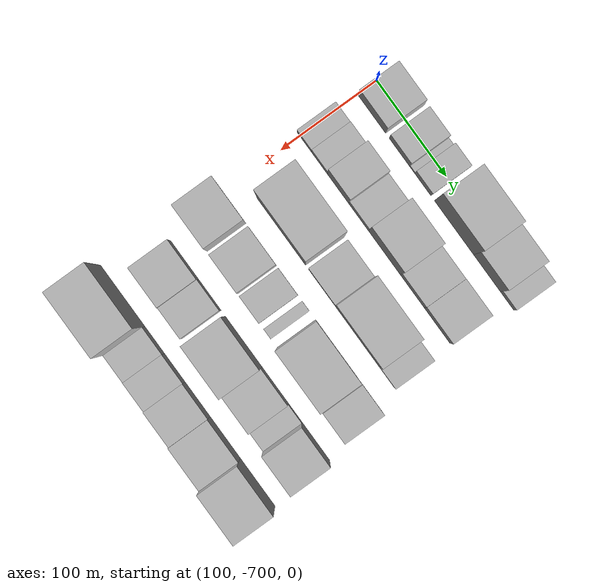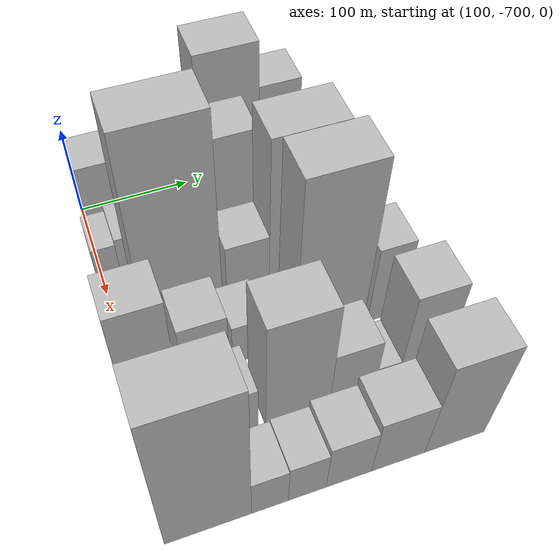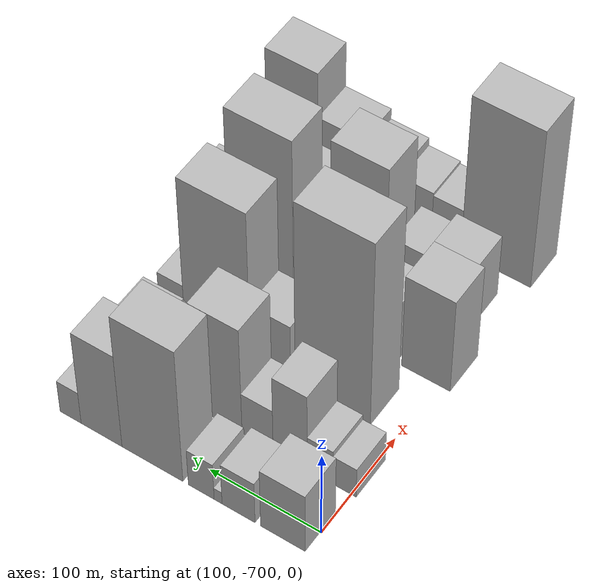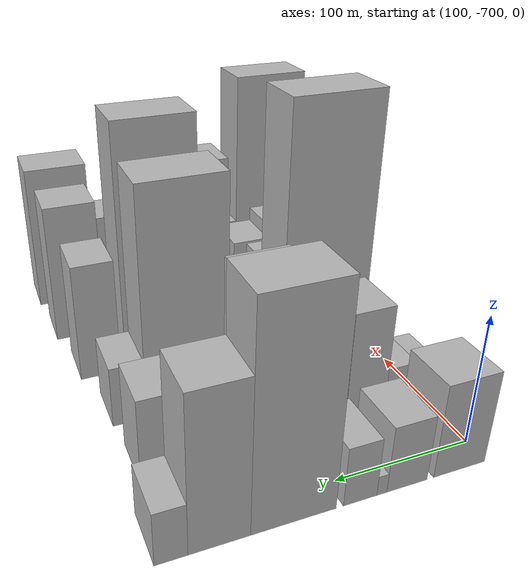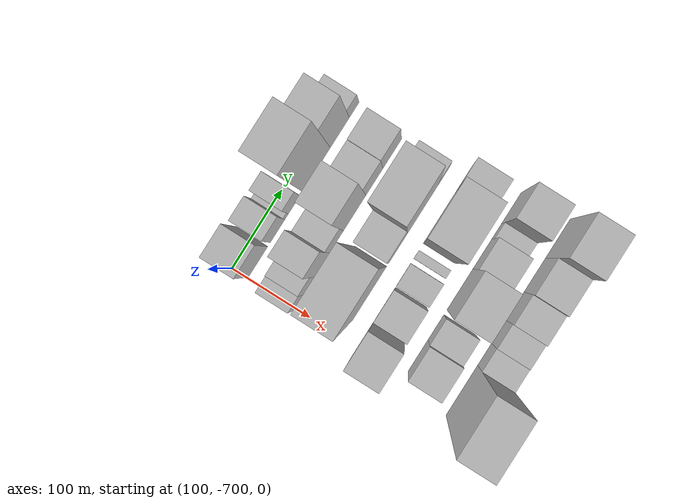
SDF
<sdf version="1.6">
 <world name="default">
  <model name="building_8">
   <static>1</static>
   <pose>100.0000 -679.2799 0 0.000000 0.000000 0.000000</pose>
   <link name="link">
    <pose>0 0 36.00 0 0 0</pose>
    <collision name="collision"><geometry><box><size>40.0000 39.3933 72.0000</size></box></geometry></collision>
    <visual name="visual">
     <cast_shadows>0</cast_shadows>
     <geometry><box><size>40.0000 39.3933 72.0000</size></box></geometry>
     <material>
      <script>
       <uri>model://HANNAS_wall/materials/scripts</uri>
       <uri>model://HANNAS_wall/materials/textures</uri>
       <name>vrc/HANNAS_wall</name>
      </script>
     </material>
    </visual>
   </link>
  </model>
  <model name="building_9">
   <static>1</static>
   <pose>100.0000 -639.7882 0 0.000000 0.000000 0.000000</pose>
   <link name="link">
    <pose>0 0 25.50 0 0 0</pose>
    <collision name="collision"><geometry><box><size>40.0000 29.5902 51.0000</size></box></geometry></collision>
    <visual name="visual">
     <cast_shadows>0</cast_shadows>
     <geometry><box><size>40.0000 29.5902 51.0000</size></box></geometry>
     <material>
      <script>
       <uri>model://HANNAS_wall/materials/scripts</uri>
       <uri>model://HANNAS_wall/materials/textures</uri>
       <name>vrc/HANNAS_wall</name>
      </script>
     </material>
    </visual>
   </link>
  </model>
  <model name="building_10">
   <static>1</static>
   <pose>100.0000 -621.4245 0 0.000000 0.000000 0.000000</pose>
   <link name="link">
    <pose>0 0 7.50 0 0 0</pose>
    <collision name="collision"><geometry><box><size>40.0000 7.1371 15.0000</size></box></geometry></collision>
    <visual name="visual">
     <cast_shadows>0</cast_shadows>
     <geometry><box><size>40.0000 7.1371 15.0000</size></box></geometry>
     <material>
      <script>
       <uri>model://HANNAS_wall/materials/scripts</uri>
       <uri>model://HANNAS_wall/materials/textures</uri>
       <name>vrc/HANNAS_wall</name>
      </script>
     </material>
    </visual>
   </link>
  </model>
  <model name="building_11">
   <static>1</static>
   <pose>100.0000 -606.1702 0 0.000000 0.000000 0.000000</pose>
   <link name="link">
    <pose>0 0 22.50 0 0 0</pose>
    <collision name="collision"><geometry><box><size>40.0000 23.3716 45.0000</size></box></geometry></collision>
    <visual name="visual">
     <cast_shadows>0</cast_shadows>
     <geometry><box><size>40.0000 23.3716 45.0000</size></box></geometry>
     <material>
      <script>
       <uri>model://HANNAS_wall/materials/scripts</uri>
       <uri>model://HANNAS_wall/materials/textures</uri>
       <name>vrc/HANNAS_wall</name>
      </script>
     </material>
    </visual>
   </link>
  </model>
  <model name="building_12">
   <static>1</static>
   <pose>100.0000 -561.4425 0 0.000000 0.000000 0.000000</pose>
   <link name="link">
    <pose>0 0 81.00 0 0 0</pose>
    <collision name="collision"><geometry><box><size>40.0000 56.0838 162.0000</size></box></geometry></collision>
    <visual name="visual">
     <cast_shadows>0</cast_shadows>
     <geometry><box><size>40.0000 56.0838 162.0000</size></box></geometry>
     <material>
      <script>
       <uri>model://HANNAS_wall/materials/scripts</uri>
       <uri>model://HANNAS_wall/materials/textures</uri>
       <name>vrc/HANNAS_wall</name>
      </script>
     </material>
    </visual>
   </link>
  </model>
  <model name="building_13">
   <static>1</static>
   <pose>100.0000 -514.2664 0 0.000000 0.000000 0.000000</pose>
   <link name="link">
    <pose>0 0 57.00 0 0 0</pose>
    <collision name="collision"><geometry><box><size>40.0000 38.2684 114.0000</size></box></geometry></collision>
    <visual name="visual">
     <cast_shadows>0</cast_shadows>
     <geometry><box><size>40.0000 38.2684 114.0000</size></box></geometry>
     <material>
      <script>
       <uri>model://HANNAS_wall/materials/scripts</uri>
       <uri>model://HANNAS_wall/materials/textures</uri>
       <name>vrc/HANNAS_wall</name>
      </script>
     </material>
    </visual>
   </link>
  </model>
  <model name="building_14">
   <static>1</static>
   <pose>100.0000 -485.1977 0 0.000000 0.000000 0.000000</pose>
   <link name="link">
    <pose>0 0 19.50 0 0 0</pose>
    <collision name="collision"><geometry><box><size>40.0000 19.8689 39.0000</size></box></geometry></collision>
    <visual name="visual">
     <cast_shadows>0</cast_shadows>
     <geometry><box><size>40.0000 19.8689 39.0000</size></box></geometry>
     <material>
      <script>
       <uri>model://HANNAS_wall/materials/scripts</uri>
       <uri>model://HANNAS_wall/materials/textures</uri>
       <name>vrc/HANNAS_wall</name>
      </script>
     </material>
    </visual>
   </link>
  </model>
  <model name="building_59">
   <static>1</static>
   <pose>160.0000 -693.7394 0 0.000000 0.000000 0.000000</pose>
   <link name="link">
    <pose>0 0 18.00 0 0 0</pose>
    <collision name="collision"><geometry><box><size>40.0000 20.7759 36.0000</size></box></geometry></collision>
    <visual name="visual">
     <cast_shadows>0</cast_shadows>
     <geometry><box><size>40.0000 20.7759 36.0000</size></box></geometry>
     <material>
      <script>
       <uri>model://HANNAS_wall/materials/scripts</uri>
       <uri>model://HANNAS_wall/materials/textures</uri>
       <name>vrc/HANNAS_wall</name>
      </script>
     </material>
    </visual>
   </link>
  </model>
  <model name="building_60">
   <static>1</static>
   <pose>160.0000 -671.8952 0 0.000000 0.000000 0.000000</pose>
   <link name="link">
    <pose>0 0 21.00 0 0 0</pose>
    <collision name="collision"><geometry><box><size>40.0000 22.9124 42.0000</size></box></geometry></collision>
    <visual name="visual">
     <cast_shadows>0</cast_shadows>
     <geometry><box><size>40.0000 22.9124 42.0000</size></box></geometry>
     <material>
      <script>
       <uri>model://HANNAS_wall/materials/scripts</uri>
       <uri>model://HANNAS_wall/materials/textures</uri>
       <name>vrc/HANNAS_wall</name>
      </script>
     </material>
    </visual>
   </link>
  </model>
  <model name="building_61">
   <static>1</static>
   <pose>160.0000 -645.0639 0 0.000000 0.000000 0.000000</pose>
   <link name="link">
    <pose>0 0 46.50 0 0 0</pose>
    <collision name="collision"><geometry><box><size>40.0000 30.7503 93.0000</size></box></geometry></collision>
    <visual name="visual">
     <cast_shadows>0</cast_shadows>
     <geometry><box><size>40.0000 30.7503 93.0000</size></box></geometry>
     <material>
      <script>
       <uri>model://HANNAS_wall/materials/scripts</uri>
       <uri>model://HANNAS_wall/materials/textures</uri>
       <name>vrc/HANNAS_wall</name>
      </script>
     </material>
    </visual>
   </link>
  </model>
  <model name="building_62">
   <static>1</static>
   <pose>160.0000 -615.5391 0 0.000000 0.000000 0.000000</pose>
   <link name="link">
    <pose>0 0 25.50 0 0 0</pose>
    <collision name="collision"><geometry><box><size>40.0000 28.2992 51.0000</size></box></geometry></collision>
    <visual name="visual">
     <cast_shadows>0</cast_shadows>
     <geometry><box><size>40.0000 28.2992 51.0000</size></box></geometry>
     <material>
      <script>
       <uri>model://HANNAS_wall/materials/scripts</uri>
       <uri>model://HANNAS_wall/materials/textures</uri>
       <name>vrc/HANNAS_wall</name>
      </script>
     </material>
    </visual>
   </link>
  </model>
  <model name="building_63">
   <static>1</static>
   <pose>160.0000 -578.7426 0 0.000000 0.000000 0.000000</pose>
   <link name="link">
    <pose>0 0 64.50 0 0 0</pose>
    <collision name="collision"><geometry><box><size>40.0000 45.2937 129.0000</size></box></geometry></collision>
    <visual name="visual">
     <cast_shadows>0</cast_shadows>
     <geometry><box><size>40.0000 45.2937 129.0000</size></box></geometry>
     <material>
      <script>
       <uri>model://HANNAS_wall/materials/scripts</uri>
       <uri>model://HANNAS_wall/materials/textures</uri>
       <name>vrc/HANNAS_wall</name>
      </script>
     </material>
    </visual>
   </link>
  </model>
  <model name="building_64">
   <static>1</static>
   <pose>160.0000 -538.9581 0 0.000000 0.000000 0.000000</pose>
   <link name="link">
    <pose>0 0 31.50 0 0 0</pose>
    <collision name="collision"><geometry><box><size>40.0000 34.2753 63.0000</size></box></geometry></collision>
    <visual name="visual">
     <cast_shadows>0</cast_shadows>
     <geometry><box><size>40.0000 34.2753 63.0000</size></box></geometry>
     <material>
      <script>
       <uri>model://HANNAS_wall/materials/scripts</uri>
       <uri>model://HANNAS_wall/materials/textures</uri>
       <name>vrc/HANNAS_wall</name>
      </script>
     </material>
    </visual>
   </link>
  </model>
  <model name="building_65">
   <static>1</static>
   <pose>160.0000 -503.1175 0 0.000000 0.000000 0.000000</pose>
   <link name="link">
    <pose>0 0 33.00 0 0 0</pose>
    <collision name="collision"><geometry><box><size>40.0000 37.4059 66.0000</size></box></geometry></collision>
    <visual name="visual">
     <cast_shadows>0</cast_shadows>
     <geometry><box><size>40.0000 37.4059 66.0000</size></box></geometry>
     <material>
      <script>
       <uri>model://HANNAS_wall/materials/scripts</uri>
       <uri>model://HANNAS_wall/materials/textures</uri>
       <name>vrc/HANNAS_wall</name>
      </script>
     </material>
    </visual>
   </link>
  </model>
  <model name="building_106">
   <static>1</static>
   <pose>220.0000 -643.2833 0 0.000000 0.000000 0.000000</pose>
   <link name="link">
    <pose>0 0 109.50 0 0 0</pose>
    <collision name="collision"><geometry><box><size>40.0000 68.5209 219.0000</size></box></geometry></collision>
    <visual name="visual">
     <cast_shadows>0</cast_shadows>
     <geometry><box><size>40.0000 68.5209 219.0000</size></box></geometry>
     <material>
      <script>
       <uri>model://HANNAS_wall/materials/scripts</uri>
       <uri>model://HANNAS_wall/materials/textures</uri>
       <name>vrc/HANNAS_wall</name>
      </script>
     </material>
    </visual>
   </link>
  </model>
  <model name="building_107">
   <static>1</static>
   <pose>220.0000 -586.2345 0 0.000000 0.000000 0.000000</pose>
   <link name="link">
    <pose>0 0 34.50 0 0 0</pose>
    <collision name="collision"><geometry><box><size>40.0000 37.5767 69.0000</size></box></geometry></collision>
    <visual name="visual">
     <cast_shadows>0</cast_shadows>
     <geometry><box><size>40.0000 37.5767 69.0000</size></box></geometry>
     <material>
      <script>
       <uri>model://HANNAS_wall/materials/scripts</uri>
       <uri>model://HANNAS_wall/materials/textures</uri>
       <name>vrc/HANNAS_wall</name>
      </script>
     </material>
    </visual>
   </link>
  </model>
  <model name="building_108">
   <static>1</static>
   <pose>220.0000 -536.5003 0 0.000000 0.000000 0.000000</pose>
   <link name="link">
    <pose>0 0 88.50 0 0 0</pose>
    <collision name="collision"><geometry><box><size>40.0000 61.8915 177.0000</size></box></geometry></collision>
    <visual name="visual">
     <cast_shadows>0</cast_shadows>
     <geometry><box><size>40.0000 61.8915 177.0000</size></box></geometry>
     <material>
      <script>
       <uri>model://HANNAS_wall/materials/scripts</uri>
       <uri>model://HANNAS_wall/materials/textures</uri>
       <name>vrc/HANNAS_wall</name>
      </script>
     </material>
    </visual>
   </link>
  </model>
  <model name="building_109">
   <static>1</static>
   <pose>220.0000 -493.5088 0 0.000000 0.000000 0.000000</pose>
   <link name="link">
    <pose>0 0 24.00 0 0 0</pose>
    <collision name="collision"><geometry><box><size>40.0000 24.0917 48.0000</size></box></geometry></collision>
    <visual name="visual">
     <cast_shadows>0</cast_shadows>
     <geometry><box><size>40.0000 24.0917 48.0000</size></box></geometry>
     <material>
      <script>
       <uri>model://HANNAS_wall/materials/scripts</uri>
       <uri>model://HANNAS_wall/materials/textures</uri>
       <name>vrc/HANNAS_wall</name>
      </script>
     </material>
    </visual>
   </link>
  </model>
  <model name="building_150">
   <static>1</static>
   <pose>280.0000 -689.1372 0 0.000000 0.000000 0.000000</pose>
   <link name="link">
    <pose>0 0 55.50 0 0 0</pose>
    <collision name="collision"><geometry><box><size>40.0000 43.9716 111.0000</size></box></geometry></collision>
    <visual name="visual">
     <cast_shadows>0</cast_shadows>
     <geometry><box><size>40.0000 43.9716 111.0000</size></box></geometry>
     <material>
      <script>
       <uri>model://HANNAS_wall/materials/scripts</uri>
       <uri>model://HANNAS_wall/materials/textures</uri>
       <name>vrc/HANNAS_wall</name>
      </script>
     </material>
    </visual>
   </link>
  </model>
  <model name="building_151">
   <static>1</static>
   <pose>280.0000 -642.6134 0 0.000000 0.000000 0.000000</pose>
   <link name="link">
    <pose>0 0 34.50 0 0 0</pose>
    <collision name="collision"><geometry><box><size>40.0000 39.0761 69.0000</size></box></geometry></collision>
    <visual name="visual">
     <cast_shadows>0</cast_shadows>
     <geometry><box><size>40.0000 39.0761 69.0000</size></box></geometry>
     <material>
      <script>
       <uri>model://HANNAS_wall/materials/scripts</uri>
       <uri>model://HANNAS_wall/materials/textures</uri>
       <name>vrc/HANNAS_wall</name>
      </script>
     </material>
    </visual>
   </link>
  </model>
  <model name="building_152">
   <static>1</static>
   <pose>280.0000 -606.1758 0 0.000000 0.000000 0.000000</pose>
   <link name="link">
    <pose>0 0 25.50 0 0 0</pose>
    <collision name="collision"><geometry><box><size>40.0000 27.7991 51.0000</size></box></geometry></collision>
    <visual name="visual">
     <cast_shadows>0</cast_shadows>
     <geometry><box><size>40.0000 27.7991 51.0000</size></box></geometry>
     <material>
      <script>
       <uri>model://HANNAS_wall/materials/scripts</uri>
       <uri>model://HANNAS_wall/materials/textures</uri>
       <name>vrc/HANNAS_wall</name>
      </script>
     </material>
    </visual>
   </link>
  </model>
  <model name="building_153">
   <static>1</static>
   <pose>280.0000 -581.1293 0 0.000000 0.000000 0.000000</pose>
   <link name="link">
    <pose>0 0 10.50 0 0 0</pose>
    <collision name="collision"><geometry><box><size>40.0000 10.2938 21.0000</size></box></geometry></collision>
    <visual name="visual">
     <cast_shadows>0</cast_shadows>
     <geometry><box><size>40.0000 10.2938 21.0000</size></box></geometry>
     <material>
      <script>
       <uri>model://HANNAS_wall/materials/scripts</uri>
       <uri>model://HANNAS_wall/materials/textures</uri>
       <name>vrc/HANNAS_wall</name>
      </script>
     </material>
    </visual>
   </link>
  </model>
  <model name="building_154">
   <static>1</static>
   <pose>280.0000 -536.6663 0 0.000000 0.000000 0.000000</pose>
   <link name="link">
    <pose>0 0 99.00 0 0 0</pose>
    <collision name="collision"><geometry><box><size>40.0000 60.6321 198.0000</size></box></geometry></collision>
    <visual name="visual">
     <cast_shadows>0</cast_shadows>
     <geometry><box><size>40.0000 60.6321 198.0000</size></box></geometry>
     <material>
      <script>
       <uri>model://HANNAS_wall/materials/scripts</uri>
       <uri>model://HANNAS_wall/materials/textures</uri>
       <name>vrc/HANNAS_wall</name>
      </script>
     </material>
    </visual>
   </link>
  </model>
  <model name="building_155">
   <static>1</static>
   <pose>280.0000 -486.9462 0 0.000000 0.000000 0.000000</pose>
   <link name="link">
    <pose>0 0 48.00 0 0 0</pose>
    <collision name="collision"><geometry><box><size>40.0000 30.8082 96.0000</size></box></geometry></collision>
    <visual name="visual">
     <cast_shadows>0</cast_shadows>
     <geometry><box><size>40.0000 30.8082 96.0000</size></box></geometry>
     <material>
      <script>
       <uri>model://HANNAS_wall/materials/scripts</uri>
       <uri>model://HANNAS_wall/materials/textures</uri>
       <name>vrc/HANNAS_wall</name>
      </script>
     </material>
    </visual>
   </link>
  </model>
  <model name="building_197">
   <static>1</static>
   <pose>340.0000 -671.9753 0 0.000000 0.000000 0.000000</pose>
   <link name="link">
    <pose>0 0 36.00 0 0 0</pose>
    <collision name="collision"><geometry><box><size>40.0000 40.6958 72.0000</size></box></geometry></collision>
    <visual name="visual">
     <cast_shadows>0</cast_shadows>
     <geometry><box><size>40.0000 40.6958 72.0000</size></box></geometry>
     <material>
      <script>
       <uri>model://HANNAS_wall/materials/scripts</uri>
       <uri>model://HANNAS_wall/materials/textures</uri>
       <name>vrc/HANNAS_wall</name>
      </script>
     </material>
    </visual>
   </link>
  </model>
  <model name="building_198">
   <static>1</static>
   <pose>340.0000 -635.8047 0 0.000000 0.000000 0.000000</pose>
   <link name="link">
    <pose>0 0 30.00 0 0 0</pose>
    <collision name="collision"><geometry><box><size>40.0000 31.6452 60.0000</size></box></geometry></collision>
    <visual name="visual">
     <cast_shadows>0</cast_shadows>
     <geometry><box><size>40.0000 31.6452 60.0000</size></box></geometry>
     <material>
      <script>
       <uri>model://HANNAS_wall/materials/scripts</uri>
       <uri>model://HANNAS_wall/materials/textures</uri>
       <name>vrc/HANNAS_wall</name>
      </script>
     </material>
    </visual>
   </link>
  </model>
  <model name="building_199">
   <static>1</static>
   <pose>340.0000 -587.6696 0 0.000000 0.000000 0.000000</pose>
   <link name="link">
    <pose>0 0 69.00 0 0 0</pose>
    <collision name="collision"><geometry><box><size>40.0000 52.6250 138.0000</size></box></geometry></collision>
    <visual name="visual">
     <cast_shadows>0</cast_shadows>
     <geometry><box><size>40.0000 52.6250 138.0000</size></box></geometry>
     <material>
      <script>
       <uri>model://HANNAS_wall/materials/scripts</uri>
       <uri>model://HANNAS_wall/materials/textures</uri>
       <name>vrc/HANNAS_wall</name>
      </script>
     </material>
    </visual>
   </link>
  </model>
  <model name="building_200">
   <static>1</static>
   <pose>340.0000 -542.4244 0 0.000000 0.000000 0.000000</pose>
   <link name="link">
    <pose>0 0 36.00 0 0 0</pose>
    <collision name="collision"><geometry><box><size>40.0000 37.8654 72.0000</size></box></geometry></collision>
    <visual name="visual">
     <cast_shadows>0</cast_shadows>
     <geometry><box><size>40.0000 37.8654 72.0000</size></box></geometry>
     <material>
      <script>
       <uri>model://HANNAS_wall/materials/scripts</uri>
       <uri>model://HANNAS_wall/materials/textures</uri>
       <name>vrc/HANNAS_wall</name>
      </script>
     </material>
    </visual>
   </link>
  </model>
  <model name="building_201">
   <static>1</static>
   <pose>340.0000 -513.7287 0 0.000000 0.000000 0.000000</pose>
   <link name="link">
    <pose>0 0 16.50 0 0 0</pose>
    <collision name="collision"><geometry><box><size>40.0000 19.5259 33.0000</size></box></geometry></collision>
    <visual name="visual">
     <cast_shadows>0</cast_shadows>
     <geometry><box><size>40.0000 19.5259 33.0000</size></box></geometry>
     <material>
      <script>
       <uri>model://HANNAS_wall/materials/scripts</uri>
       <uri>model://HANNAS_wall/materials/textures</uri>
       <name>vrc/HANNAS_wall</name>
      </script>
     </material>
    </visual>
   </link>
  </model>
  <model name="building_202">
   <static>1</static>
   <pose>340.0000 -483.9883 0 0.000000 0.000000 0.000000</pose>
   <link name="link">
    <pose>0 0 58.50 0 0 0</pose>
    <collision name="collision"><geometry><box><size>40.0000 39.9549 117.0000</size></box></geometry></collision>
    <visual name="visual">
     <cast_shadows>0</cast_shadows>
     <geometry><box><size>40.0000 39.9549 117.0000</size></box></geometry>
     <material>
      <script>
       <uri>model://HANNAS_wall/materials/scripts</uri>
       <uri>model://HANNAS_wall/materials/textures</uri>
       <name>vrc/HANNAS_wall</name>
      </script>
     </material>
    </visual>
   </link>
  </model>
  <model name="building_245">
   <static>1</static>
   <pose>400.0000 -678.6236 0 0.000000 0.000000 0.000000</pose>
   <link name="link">
    <pose>0 0 93.00 0 0 0</pose>
    <collision name="collision"><geometry><box><size>40.0000 64.1897 186.0000</size></box></geometry></collision>
    <visual name="visual">
     <cast_shadows>0</cast_shadows>
     <geometry><box><size>40.0000 64.1897 186.0000</size></box></geometry>
     <material>
      <script>
       <uri>model://HANNAS_wall/materials/scripts</uri>
       <uri>model://HANNAS_wall/materials/textures</uri>
       <name>vrc/HANNAS_wall</name>
      </script>
     </material>
    </visual>
   </link>
  </model>
  <model name="building_246">
   <static>1</static>
   <pose>400.0000 -632.5641 0 0.000000 0.000000 0.000000</pose>
   <link name="link">
    <pose>0 0 25.50 0 0 0</pose>
    <collision name="collision"><geometry><box><size>40.0000 27.9293 51.0000</size></box></geometry></collision>
    <visual name="visual">
     <cast_shadows>0</cast_shadows>
     <geometry><box><size>40.0000 27.9293 51.0000</size></box></geometry>
     <material>
      <script>
       <uri>model://HANNAS_wall/materials/scripts</uri>
       <uri>model://HANNAS_wall/materials/textures</uri>
       <name>vrc/HANNAS_wall</name>
      </script>
     </material>
    </visual>
   </link>
  </model>
  <model name="building_247">
   <static>1</static>
   <pose>400.0000 -603.8297 0 0.000000 0.000000 0.000000</pose>
   <link name="link">
    <pose>0 0 27.00 0 0 0</pose>
    <collision name="collision"><geometry><box><size>40.0000 29.5395 54.0000</size></box></geometry></collision>
    <visual name="visual">
     <cast_shadows>0</cast_shadows>
     <geometry><box><size>40.0000 29.5395 54.0000</size></box></geometry>
     <material>
      <script>
       <uri>model://HANNAS_wall/materials/scripts</uri>
       <uri>model://HANNAS_wall/materials/textures</uri>
       <name>vrc/HANNAS_wall</name>
      </script>
     </material>
    </visual>
   </link>
  </model>
  <model name="building_248">
   <static>1</static>
   <pose>400.0000 -571.0794 0 0.000000 0.000000 0.000000</pose>
   <link name="link">
    <pose>0 0 31.50 0 0 0</pose>
    <collision name="collision"><geometry><box><size>40.0000 35.9611 63.0000</size></box></geometry></collision>
    <visual name="visual">
     <cast_shadows>0</cast_shadows>
     <geometry><box><size>40.0000 35.9611 63.0000</size></box></geometry>
     <material>
      <script>
       <uri>model://HANNAS_wall/materials/scripts</uri>
       <uri>model://HANNAS_wall/materials/textures</uri>
       <name>vrc/HANNAS_wall</name>
      </script>
     </material>
    </visual>
   </link>
  </model>
  <model name="building_249">
   <static>1</static>
   <pose>400.0000 -531.4334 0 0.000000 0.000000 0.000000</pose>
   <link name="link">
    <pose>0 0 37.50 0 0 0</pose>
    <collision name="collision"><geometry><box><size>40.0000 43.3308 75.0000</size></box></geometry></collision>
    <visual name="visual">
     <cast_shadows>0</cast_shadows>
     <geometry><box><size>40.0000 43.3308 75.0000</size></box></geometry>
     <material>
      <script>
       <uri>model://HANNAS_wall/materials/scripts</uri>
       <uri>model://HANNAS_wall/materials/textures</uri>
       <name>vrc/HANNAS_wall</name>
      </script>
     </material>
    </visual>
   </link>
  </model>
  <model name="building_250">
   <static>1</static>
   <pose>400.0000 -484.6938 0 0.000000 0.000000 0.000000</pose>
   <link name="link">
    <pose>0 0 63.00 0 0 0</pose>
    <collision name="collision"><geometry><box><size>40.0000 50.1484 126.0000</size></box></geometry></collision>
    <visual name="visual">
     <cast_shadows>0</cast_shadows>
     <geometry><box><size>40.0000 50.1484 126.0000</size></box></geometry>
     <material>
      <script>
       <uri>model://HANNAS_wall/materials/scripts</uri>
       <uri>model://HANNAS_wall/materials/textures</uri>
       <name>vrc/HANNAS_wall</name>
      </script>
     </material>
    </visual>
   </link>
  </model>
 </world>
</sdf>
